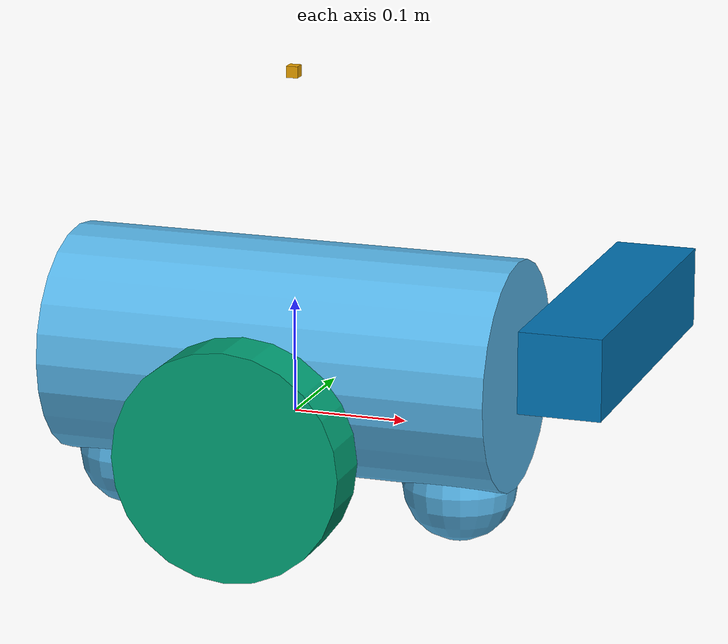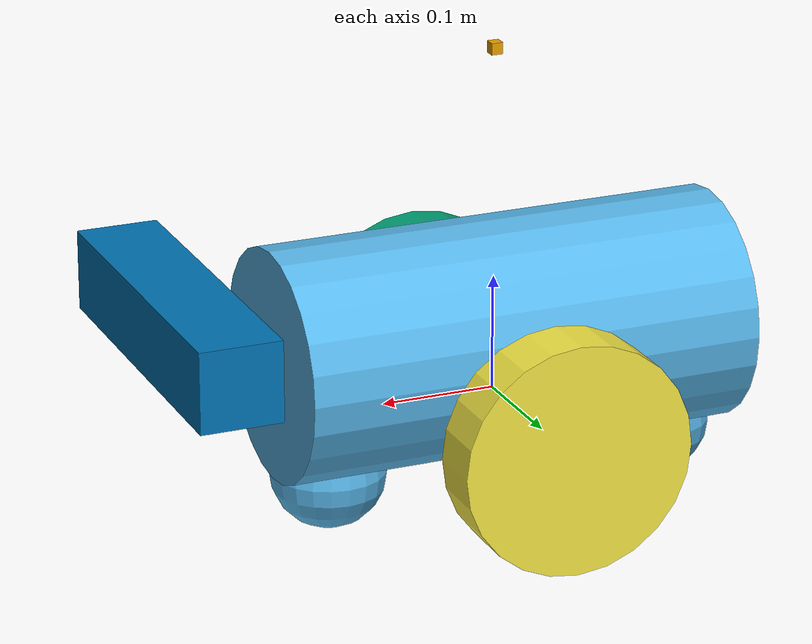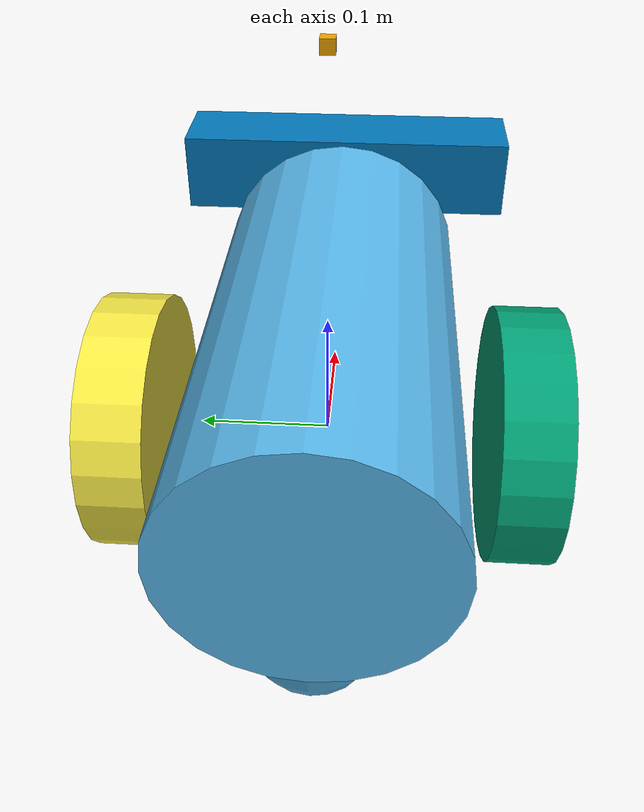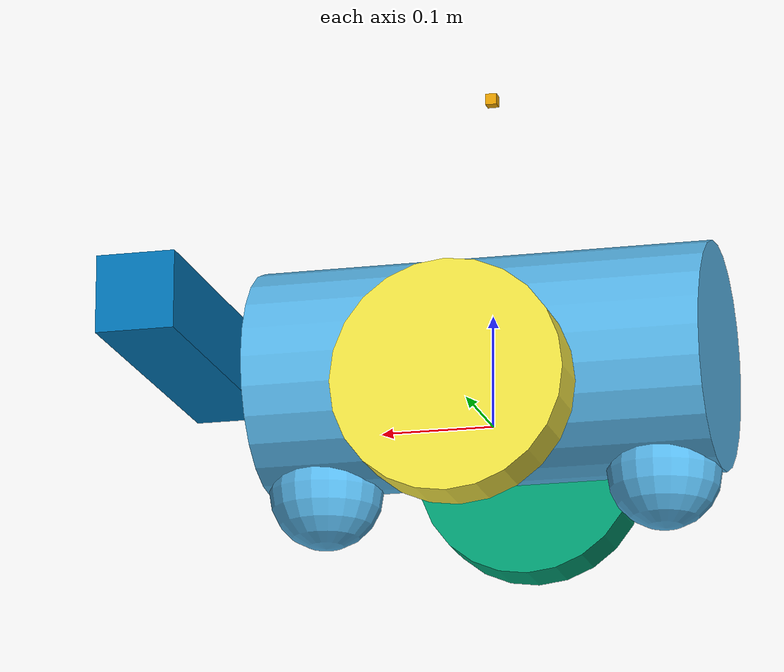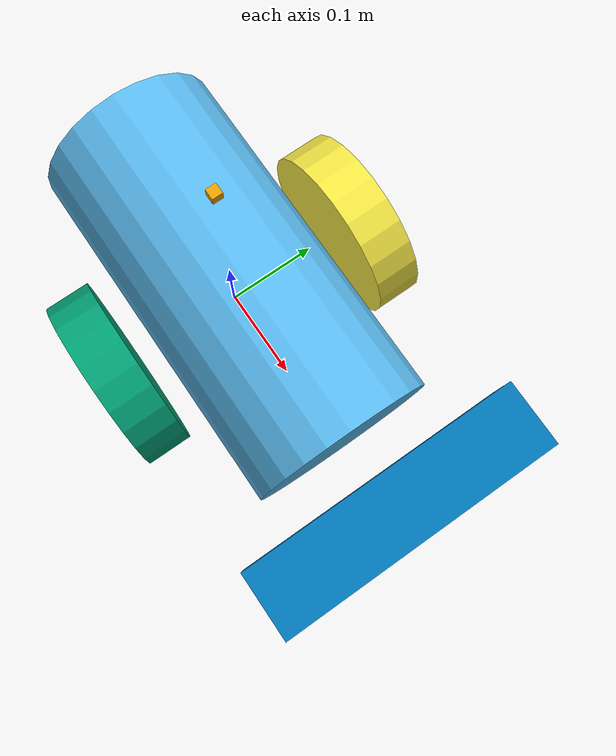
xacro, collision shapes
<?xml version='1.0'?>

<robot name="shelly" xmlns:xacro="http://www.ros.org/wiki/xacro">

<!-- ################### XACRO Definitions ############################# -->
<!-- ################### XACRO Definitions ############################# -->
<!-- ################### XACRO Definitions ############################# -->
<!-- ################### XACRO Definitions ############################# -->

<xacro:property name="min_mass" value="0.1"/>

<!-- ################### XACRO Origins ############################# -->
 <xacro:macro name="shell_origin">
     <origin xyz="0 0 0" rpy="0 0 -1.5707" />
 </xacro:macro>

  <xacro:macro name="cylinder_origin">
     <origin xyz="0 0 0.05" rpy="0 -1.5707 0" />
 </xacro:macro>

 <xacro:macro name="zero_origin">
     <origin xyz="0 0 0" rpy="0 0 0" />
 </xacro:macro>

<xacro:macro name="wheel_link_origin">
    <origin xyz="0 0 0" rpy="0 1.5707 1.5707" />
</xacro:macro>

<!-- ################### XACRO Inertias ############################# -->

<xacro:macro name="default_inertia">
    <inertia
        ixx="0.1" ixy="0" ixz="0"
        iyy="0.1" iyz="0"
        izz="0.1"
      />
</xacro:macro>

<xacro:macro name="cylinder_inertia">
    <inertia
        ixx="0.2375" ixy="0" ixz="0"
        iyy="0.075" iyz="0"
        izz="0.2375"
      />
</xacro:macro>

<xacro:macro name="min_inertia">
    <inertia
        ixx="1e-6" ixy="0" ixz="0"
        iyy="1e-6" iyz="0"
        izz="1e-6"
      />
</xacro:macro>

<!-- ################### MACRO Generators ############################# -->
<!-- ################### MACRO Generators ############################# -->
<!-- ################### MACRO Generators ############################# -->
<!-- ################### MACRO Generators ############################# -->

<xacro:macro name="generate_gazebo_reference" params="link_name color">
    <gazebo reference="${link_name}">
        <material>Gazebo/${color}</material>
    </gazebo>
</xacro:macro>

<xacro:macro name="generate_geometry" params="shape radius=0 length=0 x=0 y=0 z=0">
<!--UNITS IN METERS-->

    <geometry>

        <xacro:if value="${shape == 'box'}">
            <box size="${x} ${y} ${z}"/>
        </xacro:if>
        <xacro:if value="${shape == 'cylinder'}">
            <cylinder length="${length}" radius="${radius}"/>
        </xacro:if>
        <xacro:if value="${shape == 'sphere'}">
            <sphere radius="${radius}"/>
        </xacro:if>

    </geometry>

</xacro:macro>

<xacro:macro name="generate_wheel_link" params="side">
    <link name="${side}_wheel">
       <inertial>
           <xacro:wheel_link_origin/>
           <mass value="5"/>
           <xacro:default_inertia/>
       </inertial>
       <collision>
             <xacro:wheel_link_origin/>
             <xacro:generate_geometry shape="cylinder" radius="0.1" length="0.05" />
       </collision>
       <visual>
             <xacro:wheel_link_origin/>
             <xacro:generate_geometry shape="sphere" radius="0.001"/>
       </visual>
   </link>

</xacro:macro>

<xacro:macro name="generate_wheel_joint" params="side">
    <joint type="continuous" name="${side}_wheel_hinge">

        <xacro:if value="${side == 'left'}">
            <origin xyz="0 0.15 0" rpy="0 0 0"/>
        </xacro:if>

        <xacro:if value="${side == 'right'}">
            <origin xyz="0 -0.15 0" rpy="0 0 0"/>
        </xacro:if>

        <parent link="chassis"/>
        <child link="${side}_wheel"/>
        <axis xyz="0 1 0" rpy="0 0 0"/>
        <limit effort="10000" velocity="1000"/>
        <joint_properties damping="1.0" friction="1.0"/>
    </joint>
</xacro:macro>

 <!-- ################### ROBOT Definitions ############################# -->
 <!-- ################### ROBOT Definitions ############################# -->
 <!-- ################### ROBOT Definitions ############################# -->
 <!-- ################### ROBOT Definitions ############################# -->

<!--Includes Sensor Plugins defined in .gazebo file-->
<xacro:include filename="$(find rtab_shelly)/urdf/shelly.gazebo" />

<link name="robot_footprint"></link>

  <joint name="robot_footprint_joint" type="fixed">
      <origin xyz="0 0 0" rpy="0 0 0" />
      <parent link="robot_footprint"/>
      <child link="chassis" />
  </joint>

<!-- BEGIN Chassis -->
  <link name='chassis'>
      <pose>0 0 0 0 0 0</pose>

      <inertial>
          <mass value="1.0"/>
          <origin xyz="0.0 0 0" rpy=" 0 0 0"/>
          <xacro:cylinder_inertia/>
    </inertial>

    <collision name='collision'>
        <xacro:cylinder_origin/>
        <geometry>
            <cylinder radius="0.1" length="0.4"/>
        </geometry>
    </collision>

    <visual name='chassis_visual'>
        <xacro:shell_origin/>
        <geometry>
            <mesh filename="package://rtab_shelly/models/green_shell.dae"/>
        </geometry>
    </visual>

    <collision name='back_caster_collision'>
        <origin xyz="-0.15 0 -0.05" rpy=" 0 0 0"/>
        <geometry>
            <sphere radius="0.0499"/>
        </geometry>
        <surface>
              <friction>
                    <ode>
                        <mu>0</mu>
                        <mu2>0</mu2>
                        <slip1>1.0</slip1>
                        <slip2>1.0</slip2>
                    </ode>
              </friction>
        </surface>
    </collision>

    <visual name='back_caster_visual'>
        <origin xyz="-0.15 0 -0.05" rpy=" 0 0 0"/>
        <geometry>
            <sphere radius="0.001"/>
        </geometry>
    </visual>

    <collision name='front_caster_collision'>
        <origin xyz="0.15 0 -0.05" rpy=" 0 0 0"/>
        <geometry>
            <sphere radius="0.0499"/>
        </geometry>
        <surface>
              <friction>
                    <ode>
                        <mu>0</mu>
                        <mu2>0</mu2>
                        <slip1>1.0</slip1>
                        <slip2>1.0</slip2>
                    </ode>
              </friction>
        </surface>
    </collision>

    <visual name='front_caster_visual'>
        <origin xyz="0.15 0 -0.05" rpy=" 0 0 0"/>
        <geometry>
            <sphere radius="0.001"/>
        </geometry>
    </visual>
</link>
<!-- END Chassis -->

<!-- ################### LINK Definitions ############################# -->
<!-- ################### LINK Definitions ############################# -->
<!-- ################### LINK Definitions ############################# -->
<!-- ################### LINK Definitions ############################# -->

    <xacro:generate_wheel_link side="right"/>
    <xacro:generate_wheel_link side="left"/>

<!-- ################### JOINT Definitions ############################# -->
<!-- ################### JOINT Definitions ############################# -->
<!-- ################### JOINT Definitions ############################# -->
<!-- ################### JOINT Definitions ############################# -->

    <xacro:generate_wheel_joint side="right"/>
    <xacro:generate_wheel_joint side="left"/>

 <!--################### SENSOR Definitions ############################# -->

    <link name="camera_rgb_frame">
        <inertial>
            <xacro:zero_origin/>
            <mass value="0.1"/>
            <xacro:default_inertia/>
        </inertial>
        <collision>
            <xacro:zero_origin/>
            <xacro:generate_geometry shape="box" x="0.07" y="0.3" z="0.069"/>
        </collision>
        <visual>
            <xacro:zero_origin/>
            <geometry>
                <mesh filename="package://rtab_shelly/models/kinect/meshes/kinect.dae"/>
            </geometry>
        </visual>
    </link>

    <joint name="camera_joint" type="fixed">
        <origin xyz="0.28 0 0.1" rpy="0 0 0"/>
        <parent link="chassis"/>
        <child link="camera_rgb_frame"/>
    </joint>

        <!-- Kinect RGB Camera Optical Frame -->
        <link name="camera_rgb_optical_frame"/>
        <joint name="camera_rgb_optical_joint" type="fixed">
          <origin xyz="0 0 0" rpy="-1.571 0 -1.571"/>
          <parent link="camera_rgb_frame"/>
          <child link="camera_rgb_optical_frame"/>
        </joint>

    <!-- Kinect Depth Camera Frame -->
    <link name="camera_depth_frame"/>
    <joint name="camera_depth_joint" type="fixed">
      <origin xyz="0 0 0" rpy="0 0 0"/>
      <parent link="camera_rgb_frame"/>
      <child link="camera_depth_frame"/>
    </joint>

        <!-- Kinect Depth Camera Optical Frame -->
        <link name="camera_depth_optical_frame"/>
        <joint name="camera_depth_optical_joint" type="fixed">
          <origin xyz="0 0 0" rpy="-1.571 0 -1.571"/>
          <parent link="camera_depth_frame"/>
          <child link="camera_depth_optical_frame"/>
        </joint>

    <link name="hokuyo">
        <inertial>
            <xacro:zero_origin/>
            <mass value="0.1"/>
            <xacro:default_inertia/>
        </inertial>
        <collision>
            <xacro:zero_origin/>
            <xacro:generate_geometry shape="box" x="0.01" y="0.01" z="0.01"/>
        </collision>
        <visual>
            <xacro:zero_origin/>
            <geometry>
                <mesh filename="package://rtab_shelly/models/hokuyo.dae"/>
            </geometry>
        </visual>
    </link>

    <joint name="hokuyo_joint" type="fixed">
        <origin xyz="0 0 0.3" rpy="0 0 0"/> <!-- for shell -->
        <parent link="chassis"/>
        <child link="hokuyo"/>
    </joint>

</robot>
